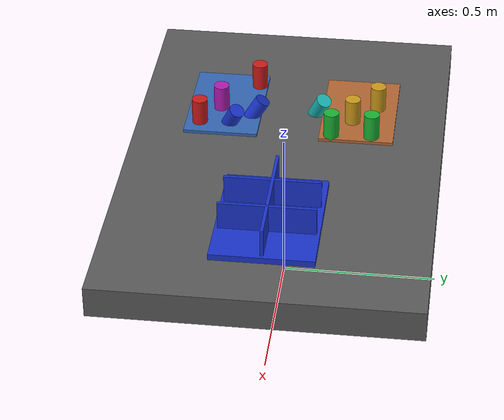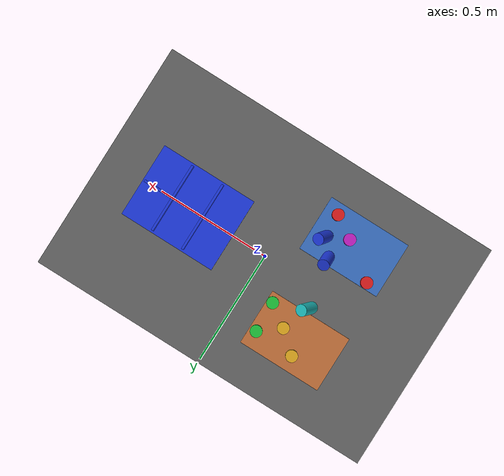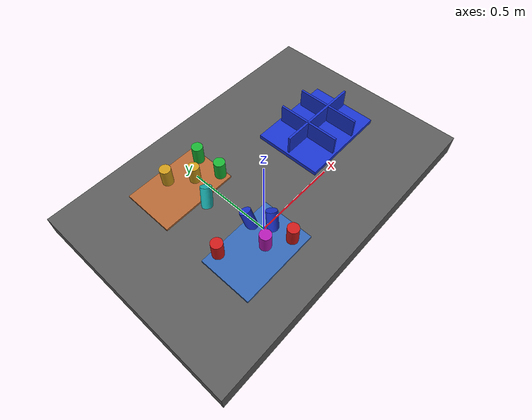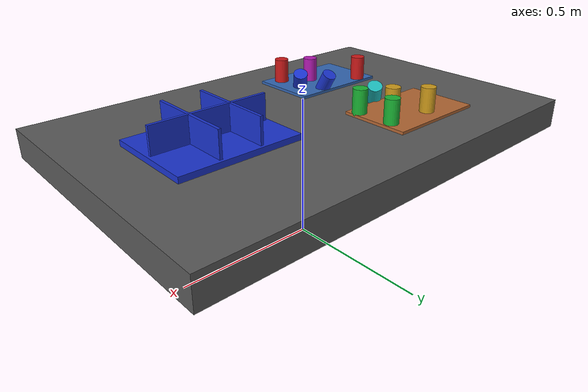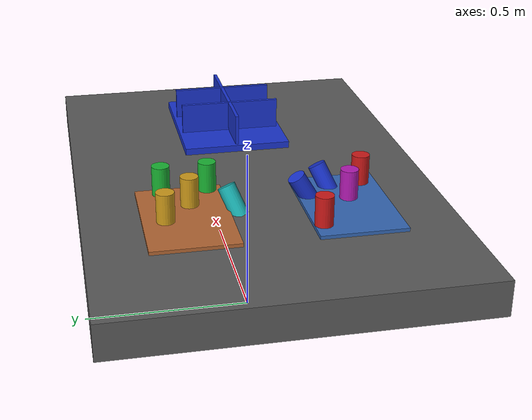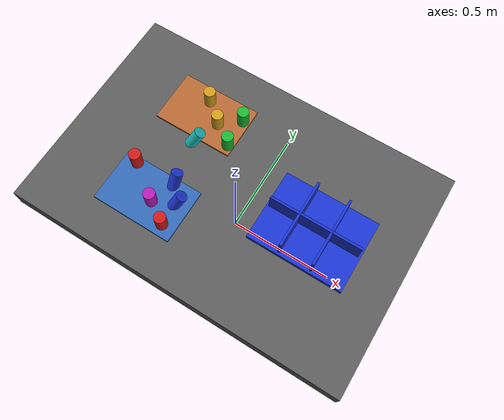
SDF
<?xml version="1.0" ?>
<sdf version="1.9">
  <!-- Standalone M1B scene.  The controller-backed Panda is spawned by the
       existing launch path; this file never alters the frozen M1A cube world. -->
  <world name="industrial_cylinder_v1">
    <physics name="bullet" type="bullet"><max_step_size>0.001</max_step_size><real_time_factor>1.0</real_time_factor></physics>
    <plugin name="gz::sim::systems::Physics" filename="gz-sim-physics-system"><engine><filename>gz-physics-bullet-featherstone-plugin</filename></engine></plugin>
    <plugin name="gz::sim::systems::UserCommands" filename="gz-sim-user-commands-system"/>
    <plugin name="gz::sim::systems::SceneBroadcaster" filename="gz-sim-scene-broadcaster-system"/>
    <plugin name="gz::sim::systems::Sensors" filename="gz-sim-sensors-system"><render_engine>ogre2</render_engine></plugin>
    <gravity>0 0 -9.81</gravity>
    <light type="directional" name="industrial_light"><pose>0 0 5 0 0 0</pose><direction>-0.3 0.2 -0.9</direction><diffuse>0.9 0.9 0.9 1</diffuse></light>
    <model name="industrial_work_table"><static>true</static><link name="link"><pose>0 0 0.4 0 0 0</pose><collision name="collision"><geometry><box><size>1.5 1.0 0.1</size></box></geometry></collision><visual name="visual"><geometry><box><size>1.5 1.0 0.1</size></box></geometry><material><diffuse>0.35 0.35 0.35 1</diffuse></material></visual></link></model>
    <model name="camera_fixture"><static>true</static><link name="camera_rgbd"><pose>-0.80 -0.80 1.40 0 0.77 0.93</pose><sensor name="front_rgbd" type="rgbd_camera"><always_on>1</always_on><update_rate>15</update_rate><topic>/xh/camera/rgbd</topic><camera><horizontal_fov>1.047</horizontal_fov><image><width>640</width><height>480</height><format>R8G8B8</format></image><clip><near>0.1</near><far>4.0</far></clip></camera></sensor></link></model>
    <model name="incoming_zone_a"><static>true</static><link name="link"><pose>-0.28 -0.22 0.455 0 0 0</pose><visual name="visual"><geometry><box><size>0.36 0.24 0.01</size></box></geometry><material><diffuse>0.2 0.4 0.7 1</diffuse></material></visual></link></model>
    <model name="incoming_zone_b"><static>true</static><link name="link"><pose>-0.28 0.22 0.455 0 0 0</pose><visual name="visual"><geometry><box><size>0.36 0.24 0.01</size></box></geometry><material><diffuse>0.7 0.4 0.2 1</diffuse></material></visual></link></model>
    <!-- M1B_RANDOM_PARTS_BEGIN -->
    <model name="cylinder_01"><pose>-0.3970 -0.1256 0.5000 0.0000 0.0000 -0.4320</pose><link name="link"><inertial><mass>0.06</mass></inertial><collision name="collision"><geometry><cylinder><radius>0.025</radius><length>0.09</length></cylinder></geometry></collision><visual name="visual"><geometry><cylinder><radius>0.025</radius><length>0.09</length></cylinder></geometry><material><diffuse>0.800 0.100 0.100 1</diffuse><specular>0.15 0.15 0.15 1</specular></material></visual></link></model>
    <model name="cylinder_02"><pose>-0.1293 0.2688 0.5000 3.1416 0.0000 0.5339</pose><link name="link"><inertial><mass>0.06</mass></inertial><collision name="collision"><geometry><cylinder><radius>0.025</radius><length>0.09</length></cylinder></geometry></collision><visual name="visual"><geometry><cylinder><radius>0.025</radius><length>0.09</length></cylinder></geometry><material><diffuse>0.100 0.700 0.200 1</diffuse><specular>0.15 0.15 0.15 1</specular></material></visual></link></model>
    <model name="cylinder_03"><pose>-0.1572 -0.1872 0.4800 0.4500 -0.3000 3.0278</pose><link name="link"><inertial><mass>0.06</mass></inertial><collision name="collision"><geometry><cylinder><radius>0.025</radius><length>0.09</length></cylinder></geometry></collision><visual name="visual"><geometry><cylinder><radius>0.025</radius><length>0.09</length></cylinder></geometry><material><diffuse>0.100 0.200 0.800 1</diffuse><specular>0.15 0.15 0.15 1</specular></material></visual></link></model>
    <model name="cylinder_04"><pose>-0.3002 0.2772 0.5000 0.0000 0.0000 -2.2397</pose><link name="link"><inertial><mass>0.06</mass></inertial><collision name="collision"><geometry><cylinder><radius>0.025</radius><length>0.09</length></cylinder></geometry></collision><visual name="visual"><geometry><cylinder><radius>0.025</radius><length>0.09</length></cylinder></geometry><material><diffuse>0.800 0.600 0.100 1</diffuse><specular>0.15 0.15 0.15 1</specular></material></visual></link></model>
    <model name="cylinder_05"><pose>-0.2499 -0.2343 0.5000 3.1416 0.0000 0.7320</pose><link name="link"><inertial><mass>0.06</mass></inertial><collision name="collision"><geometry><cylinder><radius>0.025</radius><length>0.09</length></cylinder></geometry></collision><visual name="visual"><geometry><cylinder><radius>0.025</radius><length>0.09</length></cylinder></geometry><material><diffuse>0.700 0.100 0.700 1</diffuse><specular>0.15 0.15 0.15 1</specular></material></visual></link></model>
    <model name="cylinder_06"><pose>-0.2524 0.0885 0.4800 0.4500 -0.3000 2.9086</pose><link name="link"><inertial><mass>0.06</mass></inertial><collision name="collision"><geometry><cylinder><radius>0.025</radius><length>0.09</length></cylinder></geometry></collision><visual name="visual"><geometry><cylinder><radius>0.025</radius><length>0.09</length></cylinder></geometry><material><diffuse>0.100 0.700 0.700 1</diffuse><specular>0.15 0.15 0.15 1</specular></material></visual></link></model>
    <model name="cylinder_07"><pose>-0.1585 -0.2930 0.5000 0.0000 0.0000 -1.1279</pose><link name="link"><inertial><mass>0.06</mass></inertial><collision name="collision"><geometry><cylinder><radius>0.025</radius><length>0.09</length></cylinder></geometry></collision><visual name="visual"><geometry><cylinder><radius>0.025</radius><length>0.09</length></cylinder></geometry><material><diffuse>0.800 0.100 0.100 1</diffuse><specular>0.15 0.15 0.15 1</specular></material></visual></link></model>
    <model name="cylinder_08"><pose>-0.1245 0.1392 0.5000 3.1416 0.0000 -2.3188</pose><link name="link"><inertial><mass>0.06</mass></inertial><collision name="collision"><geometry><cylinder><radius>0.025</radius><length>0.09</length></cylinder></geometry></collision><visual name="visual"><geometry><cylinder><radius>0.025</radius><length>0.09</length></cylinder></geometry><material><diffuse>0.100 0.700 0.200 1</diffuse><specular>0.15 0.15 0.15 1</specular></material></visual></link></model>
    <model name="cylinder_09"><pose>-0.2154 -0.1165 0.4800 0.4500 -0.3000 -2.6138</pose><link name="link"><inertial><mass>0.06</mass></inertial><collision name="collision"><geometry><cylinder><radius>0.025</radius><length>0.09</length></cylinder></geometry></collision><visual name="visual"><geometry><cylinder><radius>0.025</radius><length>0.09</length></cylinder></geometry><material><diffuse>0.100 0.200 0.800 1</diffuse><specular>0.15 0.15 0.15 1</specular></material></visual></link></model>
    <model name="cylinder_10"><pose>-0.2133 0.2012 0.5000 0.0000 0.0000 1.4090</pose><link name="link"><inertial><mass>0.06</mass></inertial><collision name="collision"><geometry><cylinder><radius>0.025</radius><length>0.09</length></cylinder></geometry></collision><visual name="visual"><geometry><cylinder><radius>0.025</radius><length>0.09</length></cylinder></geometry><material><diffuse>0.800 0.600 0.100 1</diffuse><specular>0.15 0.15 0.15 1</specular></material></visual></link></model>
    <!-- M1B_RANDOM_PARTS_END -->
    <model name="blue_partition_bin"><static>true</static><pose>0.36 0 0.45 0 0 0</pose><link name="link"><collision name="floor"><pose>0 0 0.01 0 0 0</pose><geometry><box><size>0.42 0.32 0.02</size></box></geometry></collision><visual name="floor_visual"><pose>0 0 0.01 0 0 0</pose><geometry><box><size>0.42 0.32 0.02</size></box></geometry><material><diffuse>0.1 0.2 0.8 1</diffuse></material></visual><visual name="row_divider"><pose>0 0 0.06 0 0 0</pose><geometry><box><size>0.40 0.01 0.10</size></box></geometry><material><diffuse>0.1 0.2 0.8 1</diffuse></material></visual><visual name="col_divider_a"><pose>-0.07 0 0.06 0 0 0</pose><geometry><box><size>0.01 0.30 0.10</size></box></geometry><material><diffuse>0.1 0.2 0.8 1</diffuse></material></visual><visual name="col_divider_b"><pose>0.07 0 0.06 0 0 0</pose><geometry><box><size>0.01 0.30 0.10</size></box></geometry><material><diffuse>0.1 0.2 0.8 1</diffuse></material></visual></link></model>
    <!-- Reserved only: second table, bin transport corridor, stackable-bin
         collision volume, and second arm mounting namespace. -->
  </world>
</sdf>
